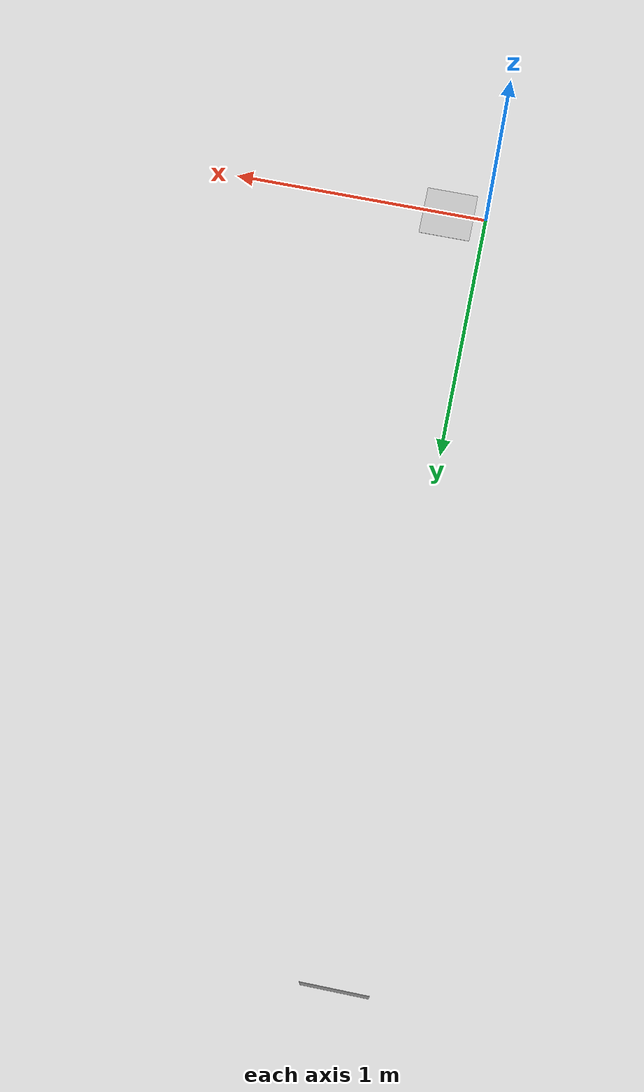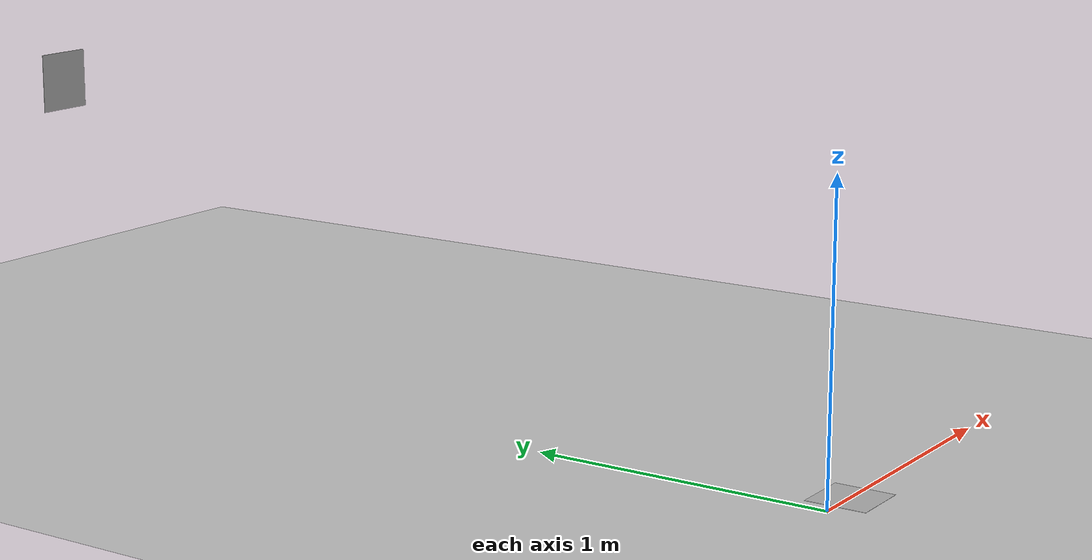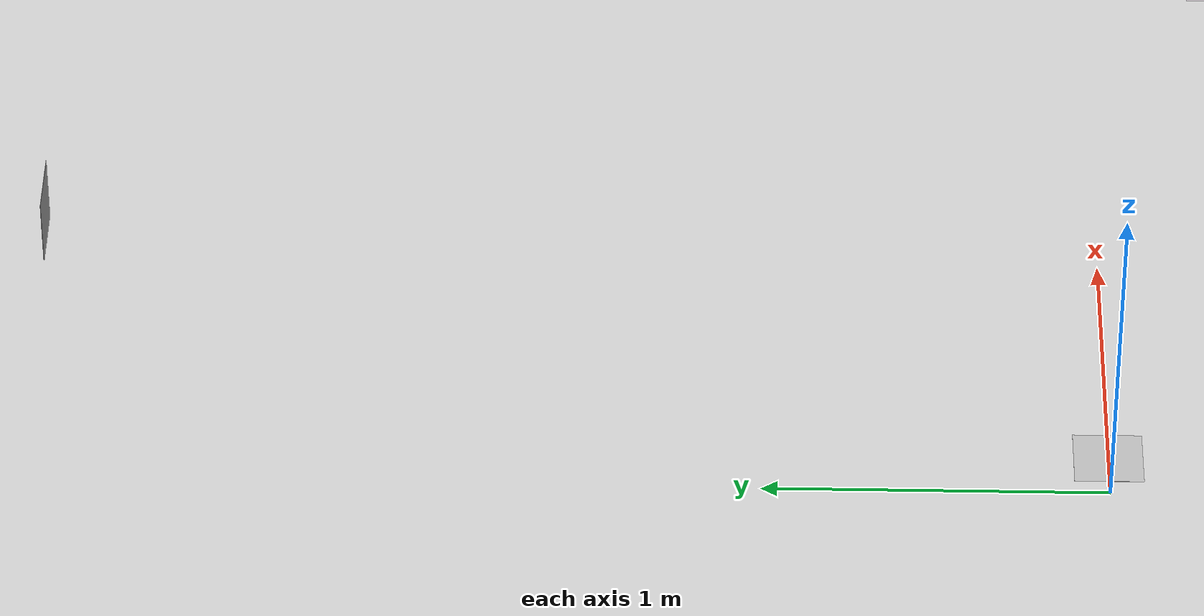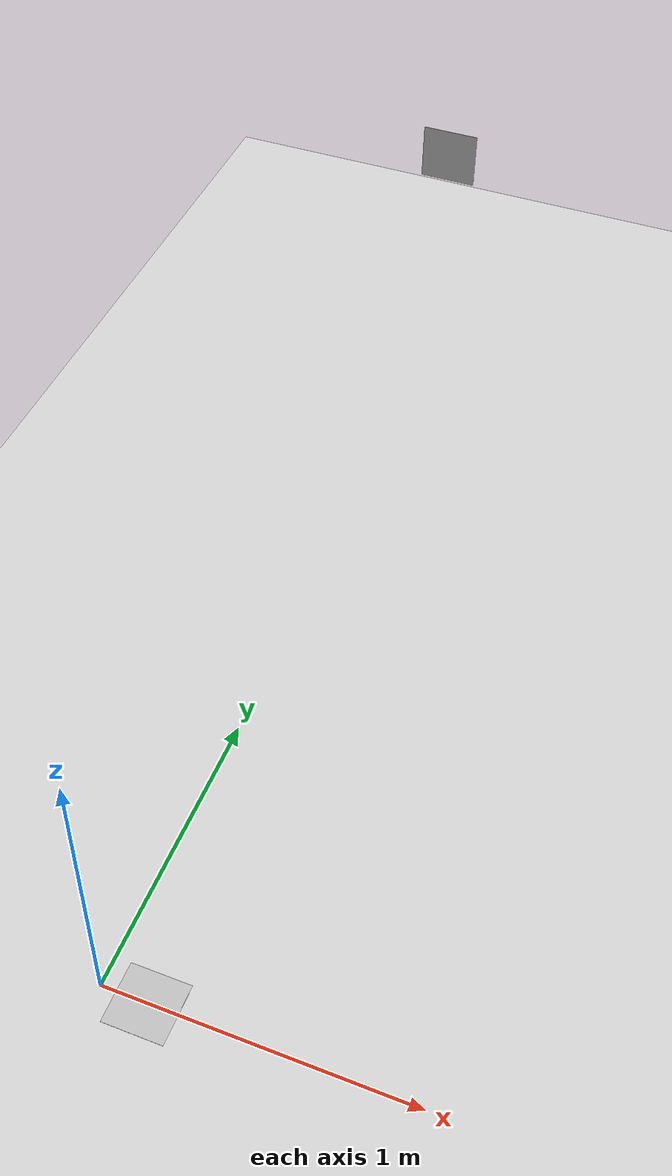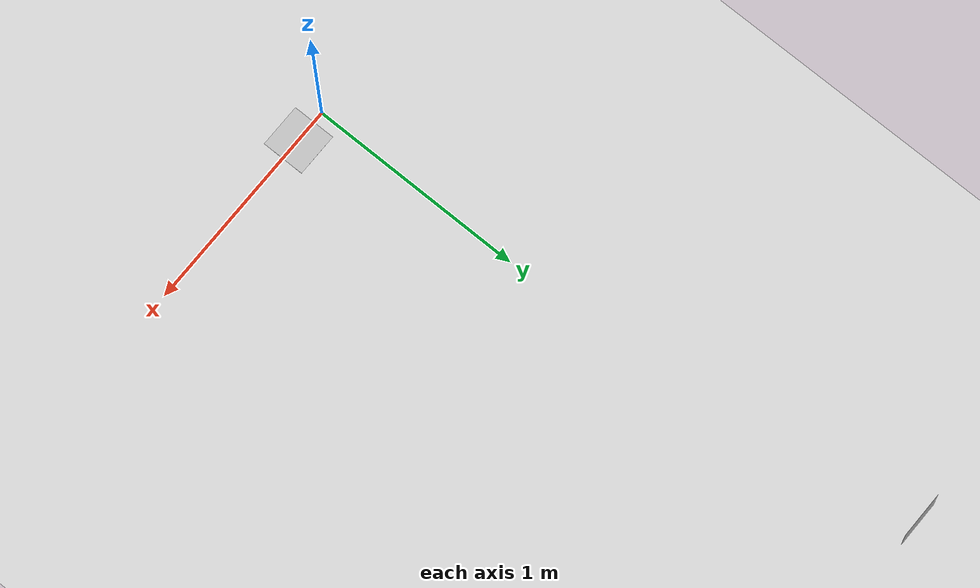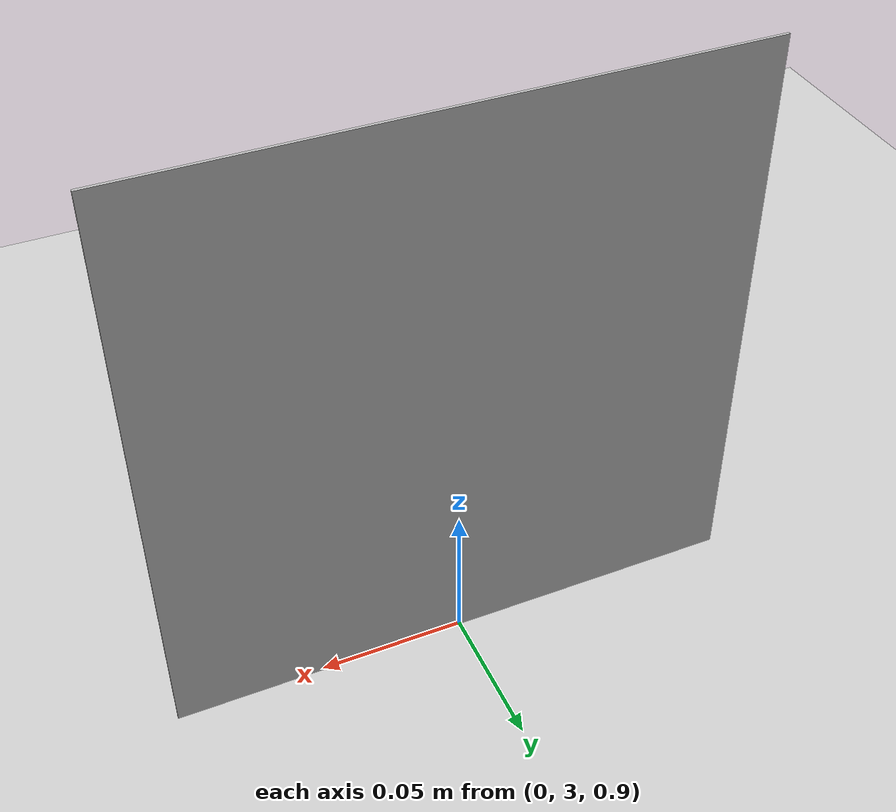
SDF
<?xml version="1.0" ?>
<sdf version="1.4">
  <world name="default">
    <include>
      <uri>model://ground_plane</uri>
    </include>

    <!-- Global light source -->
    <include>
      <uri>model://sun</uri>
    </include>

    <!-- Focus camera on tall pendulum -->
    <gui fullscreen='0'>
      <camera name='user_camera'>
        <pose>3 -3 2 0.000000 0.275643 2.356190</pose>
        <view_controller>orbit</view_controller>
      </camera>
    </gui>

    <include>
      <uri>model://ground_plane</uri>
    </include>
    <include>
      <uri>model://sun</uri>
    </include>
    <!-- ARtag floor -->
    <include>
        <uri>model://artag_floor</uri>
        <pose>0.15 0 0 0 0 0</pose>
    </include>
    <!-- ARtag wall -->
    <include>
        <uri>model://artag_wall</uri>
        <pose>0 3 1 0 1.5707 +1.5707</pose>
    </include>

   </world>
</sdf>

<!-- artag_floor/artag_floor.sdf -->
<!--
Artag Floor
author: asantamaria\iri.upc.edu
-->
<sdf version="1.4">
	<model name="artag_floor">
		<static>1</static>
	     <link name="artag_floor_link">
	     	<pose>0 0 0 0 0 0</pose>
			<visual name="visual">
				<cast_shadows>1</cast_shadows>
			   	<geometry>
			   		<box>
            			<size>0.2 0.2 0.001</size>
          			</box>
		   		</geometry>
		   		<material>
		   			<script>
		   				<uri>model://artag_floor/material/artag_floor.material</uri>
		   				<name>ARtag_floor</name>
		   			</script>
		   		</material>
		   	</visual>
			<collision name="collision">
			   	<geometry>
			   		<box>
            			<size>0.2 0.2 0.001</size>
          			</box>
		   		</geometry>
			</collision>
	    </link>
	</model>
</sdf>

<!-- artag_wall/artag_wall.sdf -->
<!--
Artag Wall
author: asantamaria@iri.upc.edu
-->
<sdf version="1.4">
	<model name="artag_wall">
		<static>1</static>
	     <link name="artag_wall_link">
	     	<pose>0 0 0 0 0 0</pose>
			<visual name="visual">
				<cast_shadows>1</cast_shadows>
			   	<geometry>
			   		<box>
            			<size>0.2 0.2 0.001</size>
          			</box>
		   		</geometry>
		   		<material>
		   			<script>
		   				<uri>model://artag_wall/material/artag_wall.material</uri>
		   				<name>ARtag_wall</name>
		   			</script>
		   		</material>
		   	</visual>
			<collision name="collision">
			   	<geometry>
			   		<box>
            			<size>0.2 0.2 0.001</size>
          			</box>
		   		</geometry>
			</collision>
	    </link>
	</model>
</sdf>
